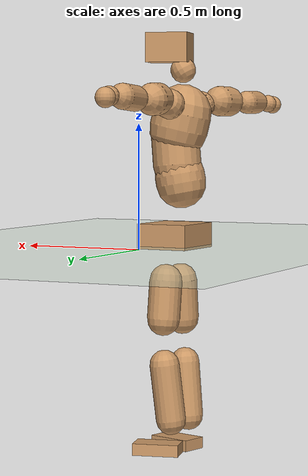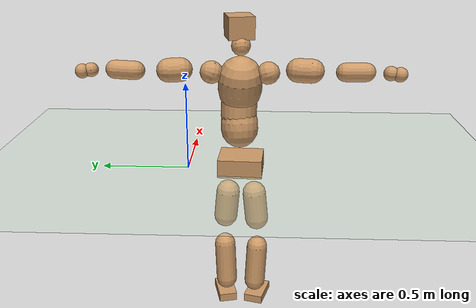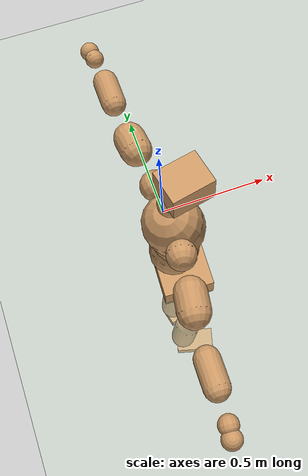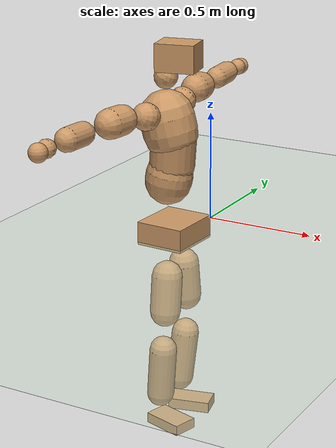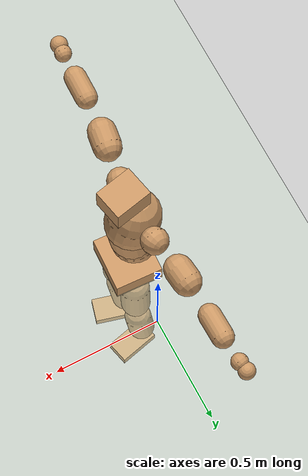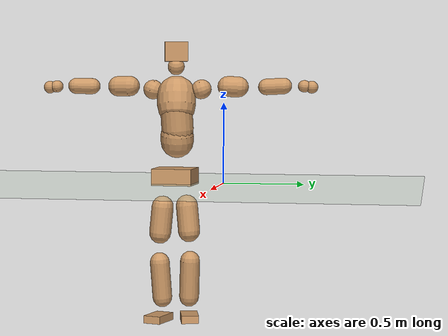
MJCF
<mujoco model="humanoid">
  <compiler coordinate="local" angle="radian"/>
  <default>
    <joint damping="0.0" armature="0.01" stiffness="0.0" limited="true"/>
    <geom conaffinity="1" condim="3" contype="7" margin="0.001" rgba="0.8 0.6 .4 1"/>
  </default>
  <asset>
    <texture type="skybox" builtin="gradient" rgb1=".4 .5 .6" rgb2="0 0 0" width="100" height="100"/>
    <texture builtin="flat" height="1278" mark="cross" markrgb="1 1 1" name="texgeom" random="0.01" rgb1="0.8 0.6 0.4" rgb2="0.8 0.6 0.4" type="cube" width="127"/>
    <texture builtin="checker" height="100" name="texplane" rgb1="0 0 0" rgb2="0.8 0.8 0.8" type="2d" width="100"/>
    <material name="MatPlane" reflectance="0.5" shininess="1" specular="1" texrepeat="60 60" texture="texplane"/>
    <material name="geom" texture="texgeom" texuniform="true"/>
  </asset>
  <worldbody>
    <light cutoff="100" diffuse="1 1 1" dir="-0 0 -1.3" directional="true" exponent="1" pos="0 0 1.3" specular=".1 .1 .1"/>
    <geom conaffinity="1" condim="3" name="floor" pos="0 0 0" rgba="0.8 0.9 0.8 1" size="100 100 .2" type="plane" material="MatPlane"/>
    <body name="Pelvis" pos="-0.0031 -0.309 0.0462">
      <freejoint name="Pelvis"/>
      <geom type="box" contype="1" conaffinity="1" density="5359.374893" pos="-0.0110 0.0005 -0.0078" size="0.1102 0.1251 0.0518" quat="0.9997 0.0000 0.0000 -0.0242" name="Pelvis"/>
      <body name="L_Hip" pos="-0.0083 0.0672 -0.0923">
        <joint name="L_Hip_x" type="hinge" pos="0 0 0" axis="1 0 0" stiffness="1600" damping="160" armature="0.02" range="-180.0000 180.0000"/>
        <joint name="L_Hip_y" type="hinge" pos="0 0 0" axis="0 1 0" stiffness="1600" damping="160" armature="0.02" range="-180.0000 180.0000"/>
        <joint name="L_Hip_z" type="hinge" pos="0 0 0" axis="0 0 1" stiffness="1600" damping="160" armature="0.02" range="-180.0000 180.0000"/>
        <geom type="capsule" contype="1" conaffinity="1" density="2040.816327" size="0.0678" fromto="0.0024 0.0091 -0.0974 0.0064 0.0239 -0.2572" name="L_Hip"/>
        <body name="L_Knee" pos="0.0088 0.033 -0.3546">
          <joint name="L_Knee_x" type="hinge" pos="0 0 0" axis="1 0 0" stiffness="1600" damping="160" armature="0.02" range="-180.0000 180.0000"/>
          <joint name="L_Knee_y" type="hinge" pos="0 0 0" axis="0 1 0" stiffness="1600" damping="160" armature="0.02" range="-180.0000 180.0000"/>
          <joint name="L_Knee_z" type="hinge" pos="0 0 0" axis="0 0 1" stiffness="1600" damping="160" armature="0.02" range="-180.0000 180.0000"/>
          <geom type="capsule" contype="1" conaffinity="1" density="1234.567901" size="0.0615" fromto="-0.0097 -0.0041 -0.0909 -0.0343 -0.0145 -0.3220" name="L_Knee"/>
          <body name="L_Ankle" pos="-0.0439 -0.0186 -0.4129">
            <joint name="L_Ankle_x" type="hinge" pos="0 0 0" axis="1 0 0" stiffness="1600" damping="160" armature="0.02" range="-180.0000 180.0000"/>
            <joint name="L_Ankle_y" type="hinge" pos="0 0 0" axis="0 1 0" stiffness="1600" damping="160" armature="0.02" range="-180.0000 180.0000"/>
            <joint name="L_Ankle_z" type="hinge" pos="0 0 0" axis="0 0 1" stiffness="1600" damping="160" armature="0.02" range="-180.0000 180.0000"/>
            <geom type="box" contype="1" conaffinity="1" density="999.999981" pos="0.0653 0.0154 -0.0301" size="0.0961 0.0533 0.0246" quat="0.9933 0.0000 0.0000 0.1157" name="L_Ankle"/>
            <body name="L_Toe" pos="0.1306 0.0308 -0.0602">
              <joint name="L_Toe_x" type="hinge" pos="0 0 0" axis="1 0 0" stiffness="1000" damping="100" armature="0.02" range="-180.0000 180.0000"/>
              <joint name="L_Toe_y" type="hinge" pos="0 0 0" axis="0 1 0" stiffness="1000" damping="100" armature="0.02" range="-180.0000 180.0000"/>
              <joint name="L_Toe_z" type="hinge" pos="0 0 0" axis="0 0 1" stiffness="1000" damping="100" armature="0.02" range="-180.0000 180.0000"/>
              <geom type="box" contype="1" conaffinity="1" density="8912363.347036" pos="0.0000 0.0000 0.0307" size="0.0011 0.0026 0.0013" quat="0.9926 0.0000 0.0000 0.1211" name="L_Toe"/>
            </body>
          </body>
        </body>
      </body>
      <body name="R_Hip" pos="-0.0029 -0.0682 -0.1013">
        <joint name="R_Hip_x" type="hinge" pos="0 0 0" axis="1 0 0" stiffness="1600" damping="160" armature="0.02" range="-180.0000 180.0000"/>
        <joint name="R_Hip_y" type="hinge" pos="0 0 0" axis="0 1 0" stiffness="1600" damping="160" armature="0.02" range="-180.0000 180.0000"/>
        <joint name="R_Hip_z" type="hinge" pos="0 0 0" axis="0 0 1" stiffness="1600" damping="160" armature="0.02" range="-180.0000 180.0000"/>
        <geom type="capsule" contype="1" conaffinity="1" density="2040.816327" size="0.0679" fromto="-0.0007 -0.0095 -0.0974 -0.0018 -0.0255 -0.2624" name="R_Hip"/>
        <body name="R_Knee" pos="-0.0025 -0.0349 -0.3598">
          <joint name="R_Knee_x" type="hinge" pos="0 0 0" axis="1 0 0" stiffness="1600" damping="160" armature="0.02" range="-180.0000 180.0000"/>
          <joint name="R_Knee_y" type="hinge" pos="0 0 0" axis="0 1 0" stiffness="1600" damping="160" armature="0.02" range="-180.0000 180.0000"/>
          <joint name="R_Knee_z" type="hinge" pos="0 0 0" axis="0 0 1" stiffness="1600" damping="160" armature="0.02" range="-180.0000 180.0000"/>
          <geom type="capsule" contype="1" conaffinity="1" density="1234.567901" size="0.0611" fromto="-0.0089 0.0047 -0.0905 -0.0313 0.0166 -0.3174" name="R_Knee"/>
          <body name="R_Ankle" pos="-0.0403 0.0213 -0.408">
            <joint name="R_Ankle_x" type="hinge" pos="0 0 0" axis="1 0 0" stiffness="1600" damping="160" armature="0.02" range="-180.0000 180.0000"/>
            <joint name="R_Ankle_y" type="hinge" pos="0 0 0" axis="0 1 0" stiffness="1600" damping="160" armature="0.02" range="-180.0000 180.0000"/>
            <joint name="R_Ankle_z" type="hinge" pos="0 0 0" axis="0 0 1" stiffness="1600" damping="160" armature="0.02" range="-180.0000 180.0000"/>
            <geom type="box" contype="1" conaffinity="1" density="999.999999" pos="0.0691 -0.0188 -0.0302" size="0.0947 0.0561 0.0236" quat="0.9912 0.0000 0.0000 -0.1325" name="R_Ankle"/>
            <body name="R_Toe" pos="0.1382 -0.0376 -0.0603">
              <joint name="R_Toe_x" type="hinge" pos="0 0 0" axis="1 0 0" stiffness="1000" damping="100" armature="0.02" range="-180.0000 180.0000"/>
              <joint name="R_Toe_y" type="hinge" pos="0 0 0" axis="0 1 0" stiffness="1000" damping="100" armature="0.02" range="-180.0000 180.0000"/>
              <joint name="R_Toe_z" type="hinge" pos="0 0 0" axis="0 0 1" stiffness="1000" damping="100" armature="0.02" range="-180.0000 180.0000"/>
              <geom type="box" contype="1" conaffinity="1" density="7971685.80903" pos="0.0000 0.0000 0.0327" size="0.0012 0.0028 0.0013" quat="0.9923 0.0000 0.0000 -0.1241" name="R_Toe"/>
            </body>
          </body>
        </body>
      </body>
      <body name="Torso" pos="-0.0546 0.0043 0.1468">
        <joint name="Torso_x" type="hinge" pos="0 0 0" axis="1 0 0" stiffness="2000" damping="200" armature="0.02" range="-180.0000 180.0000"/>
        <joint name="Torso_y" type="hinge" pos="0 0 0" axis="0 1 0" stiffness="2000" damping="200" armature="0.02" range="-180.0000 180.0000"/>
        <joint name="Torso_z" type="hinge" pos="0 0 0" axis="0 0 1" stiffness="2000" damping="200" armature="0.02" range="-180.0000 180.0000"/>
        <geom type="capsule" contype="1" conaffinity="1" density="2040.816327" size="0.1036" fromto="0.0181 0.0046 0.1019 0.0113 0.0029 0.0639" name="Torso"/>
        <body name="Spine" pos="0.0294 0.0075 0.1658">
          <joint name="Spine_x" type="hinge" pos="0 0 0" axis="1 0 0" stiffness="2000" damping="200" armature="0.02" range="-180.0000 180.0000"/>
          <joint name="Spine_y" type="hinge" pos="0 0 0" axis="0 1 0" stiffness="2000" damping="200" armature="0.02" range="-180.0000 180.0000"/>
          <joint name="Spine_z" type="hinge" pos="0 0 0" axis="0 0 1" stiffness="2000" damping="200" armature="0.02" range="-180.0000 180.0000"/>
          <geom type="capsule" contype="1" conaffinity="1" density="2040.816327" size="0.0997" fromto="0.0097 -0.0042 0.0991 -0.0030 0.0013 -0.0303" name="Spine"/>
          <body name="Chest" pos="0.0068 -0.0029 0.0688">
            <joint name="Chest_x" type="hinge" pos="0 0 0" axis="1 0 0" stiffness="2000" damping="200" armature="0.02" range="-180.0000 180.0000"/>
            <joint name="Chest_y" type="hinge" pos="0 0 0" axis="0 1 0" stiffness="2000" damping="200" armature="0.02" range="-180.0000 180.0000"/>
            <joint name="Chest_z" type="hinge" pos="0 0 0" axis="0 0 1" stiffness="2000" damping="200" armature="0.02" range="-180.0000 180.0000"/>
            <geom type="capsule" contype="1" conaffinity="1" density="2040.816327" size="0.1208" fromto="-0.0277 -0.0058 0.1175 -0.0124 -0.0026 0.0528" name="Chest"/>
            <body name="Neck" pos="-0.0579 -0.0133 0.2496">
              <joint name="Neck_x" type="hinge" pos="0 0 0" axis="1 0 0" stiffness="1000" damping="100" armature="0.02" range="-180.0000 180.0000"/>
              <joint name="Neck_y" type="hinge" pos="0 0 0" axis="0 1 0" stiffness="1000" damping="100" armature="0.02" range="-180.0000 180.0000"/>
              <joint name="Neck_z" type="hinge" pos="0 0 0" axis="0 0 1" stiffness="1000" damping="100" armature="0.02" range="-180.0000 180.0000"/>
              <geom type="capsule" contype="1" conaffinity="1" density="1000" size="0.0519" fromto="0.0271 0.0049 0.0447 0.0281 0.0051 0.0464" name="Neck"/>
              <body name="Head" pos="0.0552 0.0101 0.0912">
                <joint name="Head_x" type="hinge" pos="0 0 0" axis="1 0 0" stiffness="1000" damping="100" armature="0.02" range="-180.0000 180.0000"/>
                <joint name="Head_y" type="hinge" pos="0 0 0" axis="0 1 0" stiffness="1000" damping="100" armature="0.02" range="-180.0000 180.0000"/>
                <joint name="Head_z" type="hinge" pos="0 0 0" axis="0 0 1" stiffness="1000" damping="100" armature="0.02" range="-180.0000 180.0000"/>
                <geom type="box" contype="1" conaffinity="1" density="2250.000008" pos="0.0286 0.0060 0.0466" size="0.0866 0.0705 0.0604" quat="0.9946 0.0000 0.0000 0.1039" name="Head"/>
              </body>
            </body>
            <body name="L_Thorax" pos="-0.0283 0.0805 0.132">
              <joint name="L_Thorax_x" type="hinge" pos="0 0 0" axis="1 0 0" stiffness="1000" damping="100" armature="0.02" range="-180.0000 180.0000"/>
              <joint name="L_Thorax_y" type="hinge" pos="0 0 0" axis="0 1 0" stiffness="1000" damping="100" armature="0.02" range="-180.0000 180.0000"/>
              <joint name="L_Thorax_z" type="hinge" pos="0 0 0" axis="0 0 1" stiffness="1000" damping="100" armature="0.02" range="-180.0000 180.0000"/>
              <geom type="capsule" contype="1" conaffinity="1" density="1000" size="0.0616" fromto="-0.0134 0.0685 0.0214 -0.0138 0.0703 0.0220" name="L_Thorax"/>
              <body name="L_Shoulder" pos="-0.0272 0.1388 0.0434">
                <joint name="L_Shoulder_x" type="hinge" pos="0 0 0" axis="1 0 0" stiffness="1000" damping="100" armature="0.02" range="-720.0000 720.0000"/>
                <joint name="L_Shoulder_y" type="hinge" pos="0 0 0" axis="0 1 0" stiffness="1000" damping="100" armature="0.02" range="-720.0000 720.0000"/>
                <joint name="L_Shoulder_z" type="hinge" pos="0 0 0" axis="0 0 1" stiffness="1000" damping="100" armature="0.02" range="-720.0000 720.0000"/>
                <geom type="capsule" contype="1" conaffinity="1" density="1000" size="0.0643" fromto="-0.0105 0.0936 -0.0040 -0.0176 0.1579 -0.0067" name="L_Shoulder"/>
                <body name="L_Elbow" pos="-0.0281 0.2515 -0.0106">
                  <joint name="L_Elbow_x" type="hinge" pos="0 0 0" axis="1 0 0" stiffness="1000" damping="100" armature="0.02" range="-720.0000 720.0000"/>
                  <joint name="L_Elbow_y" type="hinge" pos="0 0 0" axis="0 1 0" stiffness="1000" damping="100" armature="0.02" range="-720.0000 720.0000"/>
                  <joint name="L_Elbow_z" type="hinge" pos="0 0 0" axis="0 0 1" stiffness="1000" damping="100" armature="0.02" range="-720.0000 720.0000"/>
                  <geom type="capsule" contype="1" conaffinity="1" density="1000" size="0.0499" fromto="-0.0012 0.0798 0.0043 -0.0029 0.1894 0.0101" name="L_Elbow"/>
                  <body name="L_Wrist" pos="-0.0041 0.2691 0.0144">
                    <joint name="L_Wrist_x" type="hinge" pos="0 0 0" axis="1 0 0" stiffness="600" damping="60" armature="0.02" range="-180.0000 180.0000"/>
                    <joint name="L_Wrist_y" type="hinge" pos="0 0 0" axis="0 1 0" stiffness="600" damping="60" armature="0.02" range="-180.0000 180.0000"/>
                    <joint name="L_Wrist_z" type="hinge" pos="0 0 0" axis="0 0 1" stiffness="600" damping="60" armature="0.02" range="-180.0000 180.0000"/>
                    <geom type="capsule" contype="1" conaffinity="1" density="1000" size="0.0377" fromto="-0.0078 0.0454 -0.0056 -0.0082 0.0474 -0.0058" name="L_Wrist"/>
                    <body name="L_Hand" pos="-0.016 0.0928 -0.0114">
                      <joint name="L_Hand_x" type="hinge" pos="0 0 0" axis="1 0 0" stiffness="600" damping="60" armature="0.02" range="-180.0000 180.0000"/>
                      <joint name="L_Hand_y" type="hinge" pos="0 0 0" axis="0 1 0" stiffness="600" damping="60" armature="0.02" range="-180.0000 180.0000"/>
                      <joint name="L_Hand_z" type="hinge" pos="0 0 0" axis="0 0 1" stiffness="600" damping="60" armature="0.02" range="-180.0000 180.0000"/>
                      <geom type="sphere" contype="1" conaffinity="1" density="1000" size="0.0384" pos="0.0000 0.0000 0.0000" name="L_Hand"/>
                    </body>
                  </body>
                </body>
              </body>
            </body>
            <body name="R_Thorax" pos="-0.034 -0.0925 0.1292">
              <joint name="R_Thorax_x" type="hinge" pos="0 0 0" axis="1 0 0" stiffness="1000" damping="100" armature="0.02" range="-180.0000 180.0000"/>
              <joint name="R_Thorax_y" type="hinge" pos="0 0 0" axis="0 1 0" stiffness="1000" damping="100" armature="0.02" range="-180.0000 180.0000"/>
              <joint name="R_Thorax_z" type="hinge" pos="0 0 0" axis="0 0 1" stiffness="1000" damping="100" armature="0.02" range="-180.0000 180.0000"/>
              <geom type="capsule" contype="1" conaffinity="1" density="1000" size="0.0609" fromto="-0.0071 -0.0631 0.0219 -0.0074 -0.0650 0.0225" name="R_Thorax"/>
              <body name="R_Shoulder" pos="-0.0145 -0.1281 0.0444">
                <joint name="R_Shoulder_x" type="hinge" pos="0 0 0" axis="1 0 0" stiffness="1000" damping="100" armature="0.02" range="-720.0000 720.0000"/>
                <joint name="R_Shoulder_y" type="hinge" pos="0 0 0" axis="0 1 0" stiffness="1000" damping="100" armature="0.02" range="-720.0000 720.0000"/>
                <joint name="R_Shoulder_z" type="hinge" pos="0 0 0" axis="0 0 1" stiffness="1000" damping="100" armature="0.02" range="-720.0000 720.0000"/>
                <geom type="capsule" contype="1" conaffinity="1" density="1000" size="0.0642" fromto="-0.0139 -0.0932 -0.0013 -0.0250 -0.1674 -0.0023" name="R_Shoulder"/>
                <body name="R_Elbow" pos="-0.039 -0.2606 -0.0036">
                  <joint name="R_Elbow_x" type="hinge" pos="0 0 0" axis="1 0 0" stiffness="1000" damping="100" armature="0.02" range="-720.0000 720.0000"/>
                  <joint name="R_Elbow_y" type="hinge" pos="0 0 0" axis="0 1 0" stiffness="1000" damping="100" armature="0.02" range="-720.0000 720.0000"/>
                  <joint name="R_Elbow_z" type="hinge" pos="0 0 0" axis="0 0 1" stiffness="1000" damping="100" armature="0.02" range="-720.0000 720.0000"/>
                  <geom type="capsule" contype="1" conaffinity="1" density="1000" size="0.0501" fromto="-0.0015 -0.0801 0.0009 -0.0035 -0.1870 0.0022" name="R_Elbow"/>
                  <body name="R_Wrist" pos="-0.005 -0.2671 0.0031">
                    <joint name="R_Wrist_x" type="hinge" pos="0 0 0" axis="1 0 0" stiffness="600" damping="60" armature="0.02" range="-180.0000 180.0000"/>
                    <joint name="R_Wrist_y" type="hinge" pos="0 0 0" axis="0 1 0" stiffness="600" damping="60" armature="0.02" range="-180.0000 180.0000"/>
                    <joint name="R_Wrist_z" type="hinge" pos="0 0 0" axis="0 0 1" stiffness="600" damping="60" armature="0.02" range="-180.0000 180.0000"/>
                    <geom type="capsule" contype="1" conaffinity="1" density="1000" size="0.0385" fromto="-0.0049 -0.0468 -0.0046 -0.0051 -0.0488 -0.0048" name="R_Wrist"/>
                    <body name="R_Hand" pos="-0.0101 -0.0956 -0.0094">
                      <joint name="R_Hand_x" type="hinge" pos="0 0 0" axis="1 0 0" stiffness="600" damping="60" armature="0.02" range="-180.0000 180.0000"/>
                      <joint name="R_Hand_y" type="hinge" pos="0 0 0" axis="0 1 0" stiffness="600" damping="60" armature="0.02" range="-180.0000 180.0000"/>
                      <joint name="R_Hand_z" type="hinge" pos="0 0 0" axis="0 0 1" stiffness="600" damping="60" armature="0.02" range="-180.0000 180.0000"/>
                      <geom type="sphere" contype="1" conaffinity="1" density="1000" size="0.0391" pos="0.0000 0.0000 0.0000" name="R_Hand"/>
                    </body>
                  </body>
                </body>
              </body>
            </body>
          </body>
        </body>
      </body>
    </body>
  </worldbody>
  <actuator>
    <motor name="L_Hip_x" joint="L_Hip_x" gear="500"/>
    <motor name="L_Hip_y" joint="L_Hip_y" gear="500"/>
    <motor name="L_Hip_z" joint="L_Hip_z" gear="500"/>
    <motor name="L_Knee_x" joint="L_Knee_x" gear="500"/>
    <motor name="L_Knee_y" joint="L_Knee_y" gear="500"/>
    <motor name="L_Knee_z" joint="L_Knee_z" gear="500"/>
    <motor name="L_Ankle_x" joint="L_Ankle_x" gear="500"/>
    <motor name="L_Ankle_y" joint="L_Ankle_y" gear="500"/>
    <motor name="L_Ankle_z" joint="L_Ankle_z" gear="500"/>
    <motor name="L_Toe_x" joint="L_Toe_x" gear="500"/>
    <motor name="L_Toe_y" joint="L_Toe_y" gear="500"/>
    <motor name="L_Toe_z" joint="L_Toe_z" gear="500"/>
    <motor name="R_Hip_x" joint="R_Hip_x" gear="500"/>
    <motor name="R_Hip_y" joint="R_Hip_y" gear="500"/>
    <motor name="R_Hip_z" joint="R_Hip_z" gear="500"/>
    <motor name="R_Knee_x" joint="R_Knee_x" gear="500"/>
    <motor name="R_Knee_y" joint="R_Knee_y" gear="500"/>
    <motor name="R_Knee_z" joint="R_Knee_z" gear="500"/>
    <motor name="R_Ankle_x" joint="R_Ankle_x" gear="500"/>
    <motor name="R_Ankle_y" joint="R_Ankle_y" gear="500"/>
    <motor name="R_Ankle_z" joint="R_Ankle_z" gear="500"/>
    <motor name="R_Toe_x" joint="R_Toe_x" gear="500"/>
    <motor name="R_Toe_y" joint="R_Toe_y" gear="500"/>
    <motor name="R_Toe_z" joint="R_Toe_z" gear="500"/>
    <motor name="Torso_x" joint="Torso_x" gear="500"/>
    <motor name="Torso_y" joint="Torso_y" gear="500"/>
    <motor name="Torso_z" joint="Torso_z" gear="500"/>
    <motor name="Spine_x" joint="Spine_x" gear="500"/>
    <motor name="Spine_y" joint="Spine_y" gear="500"/>
    <motor name="Spine_z" joint="Spine_z" gear="500"/>
    <motor name="Chest_x" joint="Chest_x" gear="500"/>
    <motor name="Chest_y" joint="Chest_y" gear="500"/>
    <motor name="Chest_z" joint="Chest_z" gear="500"/>
    <motor name="Neck_x" joint="Neck_x" gear="500"/>
    <motor name="Neck_y" joint="Neck_y" gear="500"/>
    <motor name="Neck_z" joint="Neck_z" gear="500"/>
    <motor name="Head_x" joint="Head_x" gear="500"/>
    <motor name="Head_y" joint="Head_y" gear="500"/>
    <motor name="Head_z" joint="Head_z" gear="500"/>
    <motor name="L_Thorax_x" joint="L_Thorax_x" gear="500"/>
    <motor name="L_Thorax_y" joint="L_Thorax_y" gear="500"/>
    <motor name="L_Thorax_z" joint="L_Thorax_z" gear="500"/>
    <motor name="L_Shoulder_x" joint="L_Shoulder_x" gear="500"/>
    <motor name="L_Shoulder_y" joint="L_Shoulder_y" gear="500"/>
    <motor name="L_Shoulder_z" joint="L_Shoulder_z" gear="500"/>
    <motor name="L_Elbow_x" joint="L_Elbow_x" gear="500"/>
    <motor name="L_Elbow_y" joint="L_Elbow_y" gear="500"/>
    <motor name="L_Elbow_z" joint="L_Elbow_z" gear="500"/>
    <motor name="L_Wrist_x" joint="L_Wrist_x" gear="500"/>
    <motor name="L_Wrist_y" joint="L_Wrist_y" gear="500"/>
    <motor name="L_Wrist_z" joint="L_Wrist_z" gear="500"/>
    <motor name="L_Hand_x" joint="L_Hand_x" gear="500"/>
    <motor name="L_Hand_y" joint="L_Hand_y" gear="500"/>
    <motor name="L_Hand_z" joint="L_Hand_z" gear="500"/>
    <motor name="R_Thorax_x" joint="R_Thorax_x" gear="500"/>
    <motor name="R_Thorax_y" joint="R_Thorax_y" gear="500"/>
    <motor name="R_Thorax_z" joint="R_Thorax_z" gear="500"/>
    <motor name="R_Shoulder_x" joint="R_Shoulder_x" gear="500"/>
    <motor name="R_Shoulder_y" joint="R_Shoulder_y" gear="500"/>
    <motor name="R_Shoulder_z" joint="R_Shoulder_z" gear="500"/>
    <motor name="R_Elbow_x" joint="R_Elbow_x" gear="500"/>
    <motor name="R_Elbow_y" joint="R_Elbow_y" gear="500"/>
    <motor name="R_Elbow_z" joint="R_Elbow_z" gear="500"/>
    <motor name="R_Wrist_x" joint="R_Wrist_x" gear="500"/>
    <motor name="R_Wrist_y" joint="R_Wrist_y" gear="500"/>
    <motor name="R_Wrist_z" joint="R_Wrist_z" gear="500"/>
    <motor name="R_Hand_x" joint="R_Hand_x" gear="500"/>
    <motor name="R_Hand_y" joint="R_Hand_y" gear="500"/>
    <motor name="R_Hand_z" joint="R_Hand_z" gear="500"/>
  </actuator>
  <contact>
    <exclude body1="Torso" body2="Chest"/>
    <exclude body1="Head" body2="Chest"/>
    <exclude body1="R_Knee" body2="R_Toe"/>
    <exclude body1="R_Knee" body2="L_Ankle"/>
    <exclude body1="R_Knee" body2="L_Toe"/>
    <exclude body1="L_Knee" body2="L_Toe"/>
    <exclude body1="L_Knee" body2="R_Ankle"/>
    <exclude body1="L_Knee" body2="R_Toe"/>
    <exclude body1="L_Shoulder" body2="Chest"/>
    <exclude body1="R_Shoulder" body2="Chest"/>
  </contact>
  <sensor/>
  <size njmax="700" nconmax="700"/>
</mujoco>
